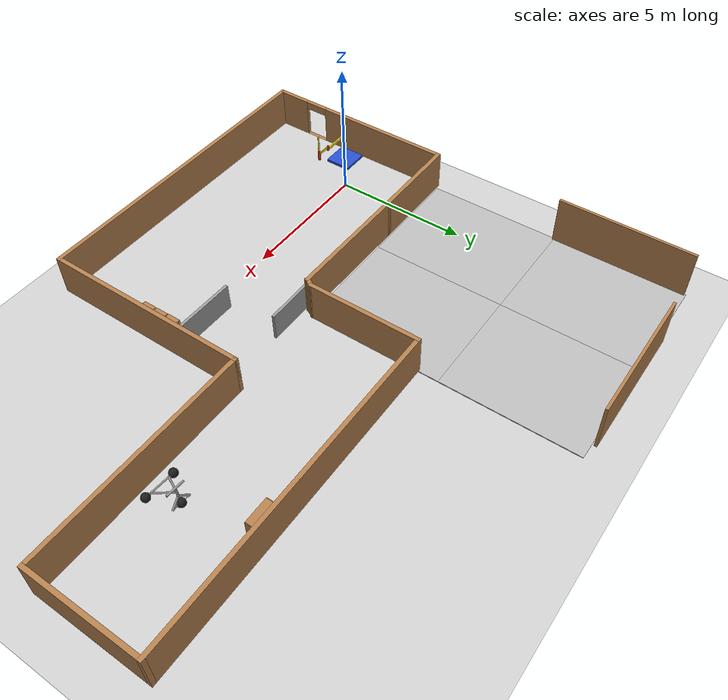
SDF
<sdf version="1.7">
 <world name="default">
  <light name="sun" type="directional">
   <pose>0 0 10 0 -0 0</pose>
   <diffuse>0.8 0.8 0.8 1</diffuse>
   <specular>0.2 0.2 0.2 1</specular>
   <attenuation>
    <range>1000</range>
    <constant>0.9</constant>
    <linear>0.01</linear>
    <quadratic>0.001</quadratic>
   </attenuation>
   <direction>-0.5 0.1 -0.9</direction>
   <spot><inner_angle>0</inner_angle><outer_angle>0</outer_angle><falloff>0</falloff></spot>
  </light>
  <model name="ground_plane">
   <static>1</static>
   <link name="link">
    <collision name="collision">
     <geometry><plane><normal>0 0 1</normal><size>100 100</size></plane></geometry>
     <surface>
      <contact><collide_bitmask>65535</collide_bitmask></contact>
      <friction><ode><mu>100</mu><mu2>50</mu2></ode></friction>
     </surface>
    </collision>
    <visual name="visual">
     <cast_shadows>0</cast_shadows>
     <geometry><plane><normal>0 0 1</normal><size>100 100</size></plane></geometry>
     <material>
      <script><uri>file://media/materials/scripts/gazebo.material</uri><name>Gazebo/Grey</name></script>
     </material>
    </visual>
   </link>
  </model>
  <gravity>0 0 -9.8</gravity>
  <magnetic_field>6e-06 2.3e-05 -4.2e-05</magnetic_field>
  <atmosphere type="adiabatic"/>
  <physics type="ode">
   <max_step_size>0.001</max_step_size>
   <real_time_factor>1</real_time_factor>
   <real_time_update_rate>1000</real_time_update_rate>
  </physics>
  <scene><ambient>0.4 0.4 0.4 1</ambient><background>0.7 0.7 0.7 1</background><shadows>1</shadows></scene>
  <audio><device>default</device></audio>
  <spherical_coordinates>
   <surface_model>EARTH_WGS84</surface_model>
   <latitude_deg>0</latitude_deg>
   <longitude_deg>0</longitude_deg>
   <elevation>0</elevation>
   <heading_deg>0</heading_deg>
  </spherical_coordinates>
  <model name="Untitled">
   <pose>8.035 1.37 0 0 -0 0</pose>
   <link name="Wall_10">
    <collision name="Wall_10_Collision">
     <geometry><box><size>4.25 0.15 1.5</size></box></geometry>
     <pose>0 0 0.75 0 -0 0</pose>
    </collision>
    <visual name="Wall_10_Visual">
     <pose>0 0 0.75 0 -0 0</pose>
     <geometry><box><size>4.25 0.15 1.5</size></box></geometry>
     <material>
      <script><uri>file://media/materials/scripts/gazebo.material</uri><name>Gazebo/Wood</name></script>
      <ambient>1 1 1 1</ambient>
     </material>
     <meta><layer>0</layer></meta>
    </visual>
    <pose>9.975 3.8 0 0 -0 1.5708</pose>
   </link>
   <link name="Wall_11">
    <collision name="Wall_11_Collision">
     <geometry><box><size>12 0.15 1.5</size></box></geometry>
     <pose>0 0 0.75 0 -0 0</pose>
    </collision>
    <visual name="Wall_11_Visual">
     <pose>0 0 0.75 0 -0 0</pose>
     <geometry><box><size>12 0.15 1.5</size></box></geometry>
     <material>
      <script><uri>file://media/materials/scripts/gazebo.material</uri><name>Gazebo/Wood</name></script>
      <ambient>1 1 1 1</ambient>
     </material>
     <meta><layer>0</layer></meta>
    </visual>
    <pose>4.05 5.85 0 0 -0 3.14159</pose>
   </link>
   <link name="Wall_12">
    <collision name="Wall_12_Collision">
     <geometry><box><size>4.25 0.15 1.5</size></box></geometry>
     <pose>0 0 0.75 0 -0 0</pose>
    </collision>
    <visual name="Wall_12_Visual">
     <pose>0 0 0.75 0 -0 0</pose>
     <geometry><box><size>4.25 0.15 1.5</size></box></geometry>
     <material>
      <script><uri>file://media/materials/scripts/gazebo.material</uri><name>Gazebo/Wood</name></script>
      <ambient>1 1 1 1</ambient>
     </material>
     <meta><layer>0</layer></meta>
    </visual>
    <pose>-1.875 3.8 0 0 -0 -1.5708</pose>
   </link>
   <link name="Wall_14">
    <collision name="Wall_14_Collision">
     <geometry><box><size>4.75 0.15 1.5</size></box></geometry>
     <pose>0 0 0.75 0 -0 0</pose>
    </collision>
    <visual name="Wall_14_Visual">
     <pose>0 0 0.75 0 -0 0</pose>
     <geometry><box><size>4.75 0.15 1.5</size></box></geometry>
     <material>
      <script><uri>file://media/materials/scripts/gazebo.material</uri><name>Gazebo/Wood</name></script>
      <ambient>1 1 1 1</ambient>
     </material>
     <meta><layer>0</layer></meta>
    </visual>
    <pose>-4.325 1.5155 0 0 -0 -0.006739</pose>
   </link>
   <link name="Wall_15">
    <collision name="Wall_15_Collision">
     <geometry><box><size>0.441548 0.15 1.5</size></box></geometry>
     <pose>0 0 0.75 0 -0 0</pose>
    </collision>
    <visual name="Wall_15_Visual">
     <pose>0 0 0.75 0 -0 0</pose>
     <geometry><box><size>0.441548 0.15 1.5</size></box></geometry>
     <material>
      <script><uri>file://media/materials/scripts/gazebo.material</uri><name>Gazebo/Wood</name></script>
      <ambient>1 1 1 1</ambient>
     </material>
     <meta><layer>0</layer></meta>
    </visual>
    <pose>-1.95 1.625 0 0 -0 1.03038</pose>
   </link>
   <link name="Wall_5">
    <collision name="Wall_5_Collision">
     <geometry><box><size>3.5 0.15 1.5</size></box></geometry>
     <pose>0 0 0.75 0 -0 0</pose>
    </collision>
    <visual name="Wall_5_Visual">
     <pose>0 0 0.75 0 -0 0</pose>
     <geometry><box><size>3.5 0.15 1.5</size></box></geometry>
     <material>
      <script><uri>file://media/materials/scripts/gazebo.material</uri><name>Gazebo/Wood</name></script>
      <ambient>1 1 1 1</ambient>
     </material>
     <meta><layer>0</layer></meta>
    </visual>
    <pose>-8.3 1.531 0 0 -0 3.14159</pose>
   </link>
   <link name="Wall_6">
    <pose>-9.975 -2.1595 0 0 -0 -1.5708</pose>
    <visual name="Wall_6_Visual_0">
     <pose>-1.12851 0 0.75 0 -0 0</pose>
     <geometry><box><size>5.27397 0.15 1.5</size></box></geometry>
     <material>
      <script><uri>file://media/materials/scripts/gazebo.material</uri><name>Gazebo/Wood</name></script>
      <ambient>1 1 1 1</ambient>
     </material>
     <meta><layer>0</layer></meta>
    </visual>
    <collision name="Wall_6_Collision_0">
     <geometry><box><size>5.27397 0.15 1.5</size></box></geometry>
     <pose>-1.12851 0 0.75 0 -0 0</pose>
    </collision>
    <visual name="Wall_6_Visual_1">
     <pose>3.08699 0 0.75 0 -0 0</pose>
     <geometry><box><size>1.35703 0.15 1.5</size></box></geometry>
     <material>
      <script><uri>file://media/materials/scripts/gazebo.material</uri><name>Gazebo/Wood</name></script>
      <ambient>1 1 1 1</ambient>
     </material>
     <meta><layer>0</layer></meta>
    </visual>
    <collision name="Wall_6_Collision_1">
     <geometry><box><size>1.35703 0.15 1.5</size></box></geometry>
     <pose>3.08699 0 0.75 0 -0 0</pose>
    </collision>
    <visual name="Wall_6_Visual_2">
     <pose>1.95847 0 0 0 -0 0</pose>
     <geometry><box><size>0.9 0.15 0</size></box></geometry>
     <material>
      <script><uri>file://media/materials/scripts/gazebo.material</uri><name>Gazebo/Wood</name></script>
      <ambient>1 1 1 1</ambient>
     </material>
     <meta><layer>0</layer></meta>
    </visual>
    <collision name="Wall_6_Collision_2">
     <geometry><box><size>0.9 0.15 0</size></box></geometry>
     <pose>1.95847 0 0 0 -0 0</pose>
    </collision>
    <visual name="Wall_6_Visual_3">
     <pose>1.95847 0 1.35 0 -0 0</pose>
     <geometry><box><size>0.9 0.15 0.3</size></box></geometry>
     <material>
      <script><uri>file://media/materials/scripts/gazebo.material</uri><name>Gazebo/Wood</name></script>
      <ambient>1 1 1 1</ambient>
     </material>
     <meta><layer>0</layer></meta>
    </visual>
    <collision name="Wall_6_Collision_3">
     <geometry><box><size>0.9 0.15 0.3</size></box></geometry>
     <pose>1.95847 0 1.35 0 -0 0</pose>
    </collision>
   </link>
   <link name="Wall_7">
    <collision name="Wall_7_Collision">
     <geometry><box><size>12 0.15 1.5</size></box></geometry>
     <pose>0 0 0.75 0 -0 0</pose>
    </collision>
    <visual name="Wall_7_Visual">
     <pose>0 0 0.75 0 -0 0</pose>
     <geometry><box><size>12 0.15 1.5</size></box></geometry>
     <material>
      <script><uri>file://media/materials/scripts/gazebo.material</uri><name>Gazebo/Wood</name></script>
      <ambient>1 1 1 1</ambient>
     </material>
     <meta><layer>0</layer></meta>
    </visual>
    <pose>-4.05 -5.85 0 0 -0 0</pose>
   </link>
   <link name="Wall_8">
    <collision name="Wall_8_Collision">
     <geometry><box><size>7.75 0.15 1.5</size></box></geometry>
     <pose>0 0 0.75 0 -0 0</pose>
    </collision>
    <visual name="Wall_8_Visual">
     <pose>0 0 0.75 0 -0 0</pose>
     <geometry><box><size>7.75 0.15 1.5</size></box></geometry>
     <material>
      <script><uri>file://media/materials/scripts/gazebo.material</uri><name>Gazebo/Wood</name></script>
      <ambient>1 1 1 1</ambient>
     </material>
     <meta><layer>0</layer></meta>
    </visual>
    <pose>1.875 -2.05 0 0 -0 1.5708</pose>
   </link>
   <link name="Wall_9">
    <collision name="Wall_9_Collision">
     <geometry><box><size>8.25 0.15 1.5</size></box></geometry>
     <pose>0 0 0.75 0 -0 0</pose>
    </collision>
    <visual name="Wall_9_Visual">
     <pose>0 0 0.75 0 -0 0</pose>
     <geometry><box><size>8.25 0.15 1.5</size></box></geometry>
     <material>
      <script><uri>file://media/materials/scripts/gazebo.material</uri><name>Gazebo/Wood</name></script>
      <ambient>1 1 1 1</ambient>
     </material>
     <meta><layer>0</layer></meta>
    </visual>
    <pose>5.925 1.75 0 0 -0 0</pose>
   </link>
   <static>1</static>
  </model>
  <model name="mud_box">
   <static>1</static>
   <link name="link">
    <collision name="collision"><geometry><box><size>8 10 0.2</size></box></geometry></collision>
    <visual name="visual_1">
     <pose>-2 2.5 0 0 -0 0</pose>
     <cast_shadows>0</cast_shadows>
     <geometry><box><size>4 5 0.2</size></box></geometry>
     <material>
      <script>
       <uri>model://mud_box/materials/scripts</uri>
       <uri>model://mud_box/materials/textures</uri>
       <name>vrc/mud</name>
      </script>
     </material>
    </visual>
    <visual name="visual_2">
     <pose>2 2.5 0 0 -0 0</pose>
     <cast_shadows>0</cast_shadows>
     <geometry><box><size>4 5 0.2</size></box></geometry>
     <material>
      <script>
       <uri>model://mud_box/materials/scripts</uri>
       <uri>model://mud_box/materials/textures</uri>
       <name>vrc/mud</name>
      </script>
     </material>
    </visual>
    <visual name="visual_3">
     <pose>2 -2.5 0 0 -0 0</pose>
     <cast_shadows>0</cast_shadows>
     <geometry><box><size>4 5 0.2</size></box></geometry>
     <material>
      <script>
       <uri>model://mud_box/materials/scripts</uri>
       <uri>model://mud_box/materials/textures</uri>
       <name>vrc/mud</name>
      </script>
     </material>
    </visual>
    <visual name="visual_4">
     <pose>-2 -2.5 0 0 -0 0</pose>
     <cast_shadows>0</cast_shadows>
     <geometry><box><size>4 5 0.2</size></box></geometry>
     <material>
      <script>
       <uri>model://mud_box/materials/scripts</uri>
       <uri>model://mud_box/materials/textures</uri>
       <name>vrc/mud</name>
      </script>
     </material>
    </visual>
   </link>
   <pose>2.16605 8.01541 -0.090493 0 -0 0</pose>
  </model>
  <model name="fence">
   <static>1</static>
   <link name="link">
    <pose>0 0 0.915 0 -0 0</pose>
    <collision name="collision"><geometry><box><size>0.1 5 1.83</size></box></geometry></collision>
    <visual name="visual">
     <cast_shadows>0</cast_shadows>
     <geometry><box><size>0.1 5 1.83</size></box></geometry>
     <material>
      <script>
       <uri>https://fuel.ignitionrobotics.org/1.0/athackst/models/fence/2/files/materials/scripts</uri>
       <uri>https://fuel.ignitionrobotics.org/1.0/athackst/models/fence/2/files/materials/textures</uri>
       <name>Fence/WoodBoarding</name>
      </script>
     </material>
    </visual>
   </link>
   <pose>-1.80264 10.4623 0 0 -0 0</pose>
  </model>
  <model name="fence_0">
   <static>1</static>
   <link name="link">
    <pose>0 0 0.915 0 -0 0</pose>
    <collision name="collision"><geometry><box><size>0.1 5 1.83</size></box></geometry></collision>
    <visual name="visual">
     <cast_shadows>0</cast_shadows>
     <geometry><box><size>0.1 5 1.83</size></box></geometry>
     <material>
      <script>
       <uri>https://fuel.ignitionrobotics.org/1.0/athackst/models/fence/2/files/materials/scripts</uri>
       <uri>https://fuel.ignitionrobotics.org/1.0/athackst/models/fence/2/files/materials/textures</uri>
       <name>Fence/WoodBoarding</name>
      </script>
     </material>
    </visual>
   </link>
   <pose>3.10267 13.1276 0 0 -0 1.56884</pose>
  </model>
  <model name="bookshelf">
   <static>1</static>
   <link name="link">
    <inertial><mass>1</mass></inertial>
    <collision name="back">
     <pose>0 0.005 0.6 0 -0 0</pose>
     <geometry><box><size>0.9 0.01 1.2</size></box></geometry>
    </collision>
    <visual name="visual1">
     <pose>0 0.005 0.6 0 -0 0</pose>
     <geometry><box><size>0.9 0.01 1.2</size></box></geometry>
     <material>
      <script><uri>file://media/materials/scripts/gazebo.material</uri><name>Gazebo/Wood</name></script>
     </material>
    </visual>
    <collision name="left_side">
     <pose>0.45 -0.195 0.6 0 -0 0</pose>
     <geometry><box><size>0.02 0.4 1.2</size></box></geometry>
    </collision>
    <visual name="visual2">
     <pose>0.45 -0.195 0.6 0 -0 0</pose>
     <geometry><box><size>0.02 0.4 1.2</size></box></geometry>
     <material>
      <script><uri>file://media/materials/scripts/gazebo.material</uri><name>Gazebo/Wood</name></script>
     </material>
    </visual>
    <collision name="right_side">
     <pose>-0.45 -0.195 0.6 0 -0 0</pose>
     <geometry><box><size>0.02 0.4 1.2</size></box></geometry>
    </collision>
    <visual name="visual3">
     <pose>-0.45 -0.195 0.6 0 -0 0</pose>
     <geometry><box><size>0.02 0.4 1.2</size></box></geometry>
     <material>
      <script><uri>file://media/materials/scripts/gazebo.material</uri><name>Gazebo/Wood</name></script>
     </material>
    </visual>
    <collision name="bottom">
     <pose>0 -0.195 0.03 0 -0 0</pose>
     <geometry><box><size>0.88 0.4 0.06</size></box></geometry>
    </collision>
    <visual name="visual4">
     <pose>0 -0.195 0.03 0 -0 0</pose>
     <geometry><box><size>0.88 0.4 0.06</size></box></geometry>
     <material>
      <script><uri>file://media/materials/scripts/gazebo.material</uri><name>Gazebo/Wood</name></script>
     </material>
    </visual>
    <collision name="top">
     <pose>0 -0.195 1.19 0 -0 0</pose>
     <geometry><box><size>0.88 0.4 0.02</size></box></geometry>
    </collision>
    <visual name="visual5">
     <pose>0 -0.195 1.19 0 -0 0</pose>
     <geometry><box><size>0.88 0.4 0.02</size></box></geometry>
     <material>
      <script><uri>file://media/materials/scripts/gazebo.material</uri><name>Gazebo/Wood</name></script>
     </material>
    </visual>
    <collision name="low_shelf">
     <pose>0 -0.195 0.43 0 -0 0</pose>
     <geometry><box><size>0.88 0.4 0.02</size></box></geometry>
    </collision>
    <visual name="visual6">
     <pose>0 -0.195 0.43 0 -0 0</pose>
     <geometry><box><size>0.88 0.4 0.02</size></box></geometry>
     <material>
      <script><uri>file://media/materials/scripts/gazebo.material</uri><name>Gazebo/Wood</name></script>
     </material>
    </visual>
    <collision name="high_shelf">
     <pose>0 -0.195 0.8 0 -0 0</pose>
     <geometry><box><size>0.88 0.4 0.02</size></box></geometry>
    </collision>
    <visual name="visual7">
     <pose>0 -0.195 0.8 0 -0 0</pose>
     <geometry><box><size>0.88 0.4 0.02</size></box></geometry>
     <material>
      <script><uri>file://media/materials/scripts/gazebo.material</uri><name>Gazebo/Wood</name></script>
     </material>
    </visual>
   </link>
   <pose>13.3788 7.16074 0 0 -0 0</pose>
  </model>
  <model name="cabinet">
   <static>1</static>
   <link name="cabinet_bottom_plate">
    <inertial>
     <pose>0 0 -1 0 -0 0</pose>
     <inertia><ixx>2.05</ixx><ixy>0</ixy><ixz>0</ixz><iyy>2.05</iyy><iyz>0</iyz><izz>2.05</izz></inertia>
     <mass>25</mass>
    </inertial>
    <collision name="cabinet_bottom_plate_geom">
     <pose>0 0 0.01 0 -0 0</pose>
     <geometry><box><size>0.45 0.45 0.02</size></box></geometry>
    </collision>
    <visual name="cabinet_bottom_plate_geom_visual">
     <pose>0 0 0.01 0 -0 0</pose>
     <geometry><box><size>0.45 0.45 0.02</size></box></geometry>
     <material>
      <script><uri>file://media/materials/scripts/gazebo.material</uri><name>Gazebo/Wood</name></script>
     </material>
    </visual>
    <collision name="cabinet_bottom_plate_geom_cabinet_back_plate">
     <pose>0.235 0 0.51 0 -0 0</pose>
     <geometry><box><size>0.02 0.45 1.02</size></box></geometry>
    </collision>
    <visual name="cabinet_bottom_plate_geom_cabinet_back_plate_visual">
     <pose>0.235 0 0.51 0 -0 0</pose>
     <geometry><box><size>0.02 0.45 1.02</size></box></geometry>
     <material>
      <script><uri>file://media/materials/scripts/gazebo.material</uri><name>Gazebo/Wood</name></script>
     </material>
    </visual>
    <collision name="cabinet_bottom_plate_geom_cabinet_left_plate">
     <pose>0 0.235 0.51 0 -0 0</pose>
     <geometry><box><size>0.45 0.02 1.02</size></box></geometry>
    </collision>
    <visual name="cabinet_bottom_plate_geom_cabinet_left_plate_visual">
     <pose>0 0.235 0.51 0 -0 0</pose>
     <geometry><box><size>0.45 0.02 1.02</size></box></geometry>
     <material>
      <script><uri>file://media/materials/scripts/gazebo.material</uri><name>Gazebo/Wood</name></script>
     </material>
    </visual>
    <collision name="cabinet_bottom_plate_geom_cabinet_middle_plate">
     <pose>0 0 0.51 0 -0 0</pose>
     <geometry><box><size>0.45 0.45 0.02</size></box></geometry>
    </collision>
    <visual name="cabinet_bottom_plate_geom_cabinet_middle_plate_visual">
     <pose>0 0 0.51 0 -0 0</pose>
     <geometry><box><size>0.45 0.45 0.02</size></box></geometry>
     <material>
      <script><uri>file://media/materials/scripts/gazebo.material</uri><name>Gazebo/Wood</name></script>
     </material>
    </visual>
    <collision name="cabinet_bottom_plate_geom_cabinet_right_plate">
     <pose>0 -0.235 0.51 0 -0 0</pose>
     <geometry><box><size>0.45 0.02 1.02</size></box></geometry>
    </collision>
    <visual name="cabinet_bottom_plate_geom_cabinet_right_plate_visual">
     <pose>0 -0.235 0.51 0 -0 0</pose>
     <geometry><box><size>0.45 0.02 1.02</size></box></geometry>
     <material>
      <script><uri>file://media/materials/scripts/gazebo.material</uri><name>Gazebo/Wood</name></script>
     </material>
    </visual>
    <collision name="cabinet_bottom_plate_geom_cabinet_top_plate">
     <pose>0 0 1.01 0 -0 0</pose>
     <geometry><box><size>0.45 0.45 0.02</size></box></geometry>
    </collision>
    <visual name="cabinet_bottom_plate_geom_cabinet_top_plate_visual">
     <pose>0 0 1.01 0 -0 0</pose>
     <geometry><box><size>0.45 0.45 0.02</size></box></geometry>
     <material>
      <script><uri>file://media/materials/scripts/gazebo.material</uri><name>Gazebo/Wood</name></script>
     </material>
    </visual>
   </link>
   <pose>9.65126 -0.407227 0 0 -0 0</pose>
  </model>
  <model name="cabinet_0">
   <static>1</static>
   <link name="cabinet_bottom_plate">
    <inertial>
     <pose>0 0 -1 0 -0 0</pose>
     <inertia><ixx>2.05</ixx><ixy>0</ixy><ixz>0</ixz><iyy>2.05</iyy><iyz>0</iyz><izz>2.05</izz></inertia>
     <mass>25</mass>
    </inertial>
    <collision name="cabinet_bottom_plate_geom">
     <pose>0 0 0.01 0 -0 0</pose>
     <geometry><box><size>0.45 0.45 0.02</size></box></geometry>
    </collision>
    <visual name="cabinet_bottom_plate_geom_visual">
     <pose>0 0 0.01 0 -0 0</pose>
     <geometry><box><size>0.45 0.45 0.02</size></box></geometry>
     <material>
      <script><uri>file://media/materials/scripts/gazebo.material</uri><name>Gazebo/Wood</name></script>
     </material>
    </visual>
    <collision name="cabinet_bottom_plate_geom_cabinet_back_plate">
     <pose>0.235 0 0.51 0 -0 0</pose>
     <geometry><box><size>0.02 0.45 1.02</size></box></geometry>
    </collision>
    <visual name="cabinet_bottom_plate_geom_cabinet_back_plate_visual">
     <pose>0.235 0 0.51 0 -0 0</pose>
     <geometry><box><size>0.02 0.45 1.02</size></box></geometry>
     <material>
      <script><uri>file://media/materials/scripts/gazebo.material</uri><name>Gazebo/Wood</name></script>
     </material>
    </visual>
    <collision name="cabinet_bottom_plate_geom_cabinet_left_plate">
     <pose>0 0.235 0.51 0 -0 0</pose>
     <geometry><box><size>0.45 0.02 1.02</size></box></geometry>
    </collision>
    <visual name="cabinet_bottom_plate_geom_cabinet_left_plate_visual">
     <pose>0 0.235 0.51 0 -0 0</pose>
     <geometry><box><size>0.45 0.02 1.02</size></box></geometry>
     <material>
      <script><uri>file://media/materials/scripts/gazebo.material</uri><name>Gazebo/Wood</name></script>
     </material>
    </visual>
    <collision name="cabinet_bottom_plate_geom_cabinet_middle_plate">
     <pose>0 0 0.51 0 -0 0</pose>
     <geometry><box><size>0.45 0.45 0.02</size></box></geometry>
    </collision>
    <visual name="cabinet_bottom_plate_geom_cabinet_middle_plate_visual">
     <pose>0 0 0.51 0 -0 0</pose>
     <geometry><box><size>0.45 0.45 0.02</size></box></geometry>
     <material>
      <script><uri>file://media/materials/scripts/gazebo.material</uri><name>Gazebo/Wood</name></script>
     </material>
    </visual>
    <collision name="cabinet_bottom_plate_geom_cabinet_right_plate">
     <pose>0 -0.235 0.51 0 -0 0</pose>
     <geometry><box><size>0.45 0.02 1.02</size></box></geometry>
    </collision>
    <visual name="cabinet_bottom_plate_geom_cabinet_right_plate_visual">
     <pose>0 -0.235 0.51 0 -0 0</pose>
     <geometry><box><size>0.45 0.02 1.02</size></box></geometry>
     <material>
      <script><uri>file://media/materials/scripts/gazebo.material</uri><name>Gazebo/Wood</name></script>
     </material>
    </visual>
    <collision name="cabinet_bottom_plate_geom_cabinet_top_plate">
     <pose>0 0 1.01 0 -0 0</pose>
     <geometry><box><size>0.45 0.45 0.02</size></box></geometry>
    </collision>
    <visual name="cabinet_bottom_plate_geom_cabinet_top_plate_visual">
     <pose>0 0 1.01 0 -0 0</pose>
     <geometry><box><size>0.45 0.45 0.02</size></box></geometry>
     <material>
      <script><uri>file://media/materials/scripts/gazebo.material</uri><name>Gazebo/Wood</name></script>
     </material>
    </visual>
   </link>
   <pose>9.63615 0.098483 0 0 -0 0</pose>
  </model>
  <model name="cabinet_1">
   <static>1</static>
   <link name="cabinet_bottom_plate">
    <inertial>
     <pose>0 0 -1 0 -0 0</pose>
     <inertia><ixx>2.05</ixx><ixy>0</ixy><ixz>0</ixz><iyy>2.05</iyy><iyz>0</iyz><izz>2.05</izz></inertia>
     <mass>25</mass>
    </inertial>
    <collision name="cabinet_bottom_plate_geom">
     <pose>0 0 0.01 0 -0 0</pose>
     <geometry><box><size>0.45 0.45 0.02</size></box></geometry>
    </collision>
    <visual name="cabinet_bottom_plate_geom_visual">
     <pose>0 0 0.01 0 -0 0</pose>
     <geometry><box><size>0.45 0.45 0.02</size></box></geometry>
     <material>
      <script><uri>file://media/materials/scripts/gazebo.material</uri><name>Gazebo/Wood</name></script>
     </material>
    </visual>
    <collision name="cabinet_bottom_plate_geom_cabinet_back_plate">
     <pose>0.235 0 0.51 0 -0 0</pose>
     <geometry><box><size>0.02 0.45 1.02</size></box></geometry>
    </collision>
    <visual name="cabinet_bottom_plate_geom_cabinet_back_plate_visual">
     <pose>0.235 0 0.51 0 -0 0</pose>
     <geometry><box><size>0.02 0.45 1.02</size></box></geometry>
     <material>
      <script><uri>file://media/materials/scripts/gazebo.material</uri><name>Gazebo/Wood</name></script>
     </material>
    </visual>
    <collision name="cabinet_bottom_plate_geom_cabinet_left_plate">
     <pose>0 0.235 0.51 0 -0 0</pose>
     <geometry><box><size>0.45 0.02 1.02</size></box></geometry>
    </collision>
    <visual name="cabinet_bottom_plate_geom_cabinet_left_plate_visual">
     <pose>0 0.235 0.51 0 -0 0</pose>
     <geometry><box><size>0.45 0.02 1.02</size></box></geometry>
     <material>
      <script><uri>file://media/materials/scripts/gazebo.material</uri><name>Gazebo/Wood</name></script>
     </material>
    </visual>
    <collision name="cabinet_bottom_plate_geom_cabinet_middle_plate">
     <pose>0 0 0.51 0 -0 0</pose>
     <geometry><box><size>0.45 0.45 0.02</size></box></geometry>
    </collision>
    <visual name="cabinet_bottom_plate_geom_cabinet_middle_plate_visual">
     <pose>0 0 0.51 0 -0 0</pose>
     <geometry><box><size>0.45 0.45 0.02</size></box></geometry>
     <material>
      <script><uri>file://media/materials/scripts/gazebo.material</uri><name>Gazebo/Wood</name></script>
     </material>
    </visual>
    <collision name="cabinet_bottom_plate_geom_cabinet_right_plate">
     <pose>0 -0.235 0.51 0 -0 0</pose>
     <geometry><box><size>0.45 0.02 1.02</size></box></geometry>
    </collision>
    <visual name="cabinet_bottom_plate_geom_cabinet_right_plate_visual">
     <pose>0 -0.235 0.51 0 -0 0</pose>
     <geometry><box><size>0.45 0.02 1.02</size></box></geometry>
     <material>
      <script><uri>file://media/materials/scripts/gazebo.material</uri><name>Gazebo/Wood</name></script>
     </material>
    </visual>
    <collision name="cabinet_bottom_plate_geom_cabinet_top_plate">
     <pose>0 0 1.01 0 -0 0</pose>
     <geometry><box><size>0.45 0.45 0.02</size></box></geometry>
    </collision>
    <visual name="cabinet_bottom_plate_geom_cabinet_top_plate_visual">
     <pose>0 0 1.01 0 -0 0</pose>
     <geometry><box><size>0.45 0.45 0.02</size></box></geometry>
     <material>
      <script><uri>file://media/materials/scripts/gazebo.material</uri><name>Gazebo/Wood</name></script>
     </material>
    </visual>
   </link>
   <pose>9.65623 -0.908227 0 0 -0 0</pose>
  </model>
  <light name="user_point_light_0" type="point">
   <pose>6.93334 -3.24288 1 0 -0 0</pose>
   <diffuse>0.5 0.5 0.5 1</diffuse>
   <specular>0.1 0.1 0.1 1</specular>
   <attenuation>
    <range>20</range>
    <constant>0.5</constant>
    <linear>0.01</linear>
    <quadratic>0.001</quadratic>
   </attenuation>
   <cast_shadows>0</cast_shadows>
   <direction>0 0 -1</direction>
   <spot><inner_angle>0</inner_angle><outer_angle>0</outer_angle><falloff>0</falloff></spot>
  </light>
  <light name="user_point_light_1" type="point">
   <pose>17.2804 6.65712 1 0 -0 0</pose>
   <diffuse>0.5 0.5 0.5 1</diffuse>
   <specular>0.1 0.1 0.1 1</specular>
   <attenuation>
    <range>20</range>
    <constant>0.5</constant>
    <linear>0.01</linear>
    <quadratic>0.001</quadratic>
   </attenuation>
   <cast_shadows>0</cast_shadows>
   <direction>0 0 -1</direction>
   <spot><inner_angle>0</inner_angle><outer_angle>0</outer_angle><falloff>0</falloff></spot>
  </light>
  <light name="user_point_light_2" type="point">
   <pose>0.106218 2.28764 1 0 -0 0</pose>
   <diffuse>0.5 0.5 0.5 1</diffuse>
   <specular>0.1 0.1 0.1 1</specular>
   <attenuation>
    <range>20</range>
    <constant>0.5</constant>
    <linear>0.01</linear>
    <quadratic>0.001</quadratic>
   </attenuation>
   <cast_shadows>0</cast_shadows>
   <direction>0 0 -1</direction>
   <spot><inner_angle>0</inner_angle><outer_angle>0</outer_angle><falloff>0</falloff></spot>
  </light>
  <light name="user_point_light_3" type="point">
   <pose>8.56427 6.74467 1 0 -0 0</pose>
   <diffuse>0.5 0.5 0.5 1</diffuse>
   <specular>0.1 0.1 0.1 1</specular>
   <attenuation>
    <range>20</range>
    <constant>0.5</constant>
    <linear>0.01</linear>
    <quadratic>0.001</quadratic>
   </attenuation>
   <cast_shadows>0</cast_shadows>
   <direction>0 0 -1</direction>
   <spot><inner_angle>0</inner_angle><outer_angle>0</outer_angle><falloff>0</falloff></spot>
  </light>
  <light name="user_point_light_4" type="point">
   <pose>-0.608477 -3.97811 1 0 -0 0</pose>
   <diffuse>0.5 0.5 0.5 1</diffuse>
   <specular>0.1 0.1 0.1 1</specular>
   <attenuation>
    <range>20</range>
    <constant>0.5</constant>
    <linear>0.01</linear>
    <quadratic>0.001</quadratic>
   </attenuation>
   <cast_shadows>0</cast_shadows>
   <direction>0 0 -1</direction>
   <spot><inner_angle>0</inner_angle><outer_angle>0</outer_angle><falloff>0</falloff></spot>
  </light>
  <model name="trisphere_cycle">
   <link name="frame">
    <pose>-0.408559 0 0.385023 0 -0.522021 0</pose>
    <inertial>
     <mass>10</mass>
     <inertia><ixx>0.228</ixx><iyy>0.743521</iyy><izz>0.965521</izz><ixy>0</ixy><ixz>0</ixz><iyz>0</iyz></inertia>
    </inertial>
    <collision name="axle_collision">
     <pose>-0.471335 0 0 1.5708 -0 0</pose>
     <geometry><cylinder><length>1.03923</length><radius>0.03</radius></cylinder></geometry>
    </collision>
    <visual name="axle_visual">
     <pose>-0.471335 0 0 1.5708 -0 0</pose>
     <geometry><cylinder><length>1.03923</length><radius>0.03</radius></cylinder></geometry>
     <material>
      <script><uri>file://media/materials/scripts/gazebo.material</uri><name>Gazebo/Grey</name></script>
     </material>
    </visual>
    <collision name="frame_left_collision">
     <pose>0 0.171552 0 -2.79253 1.57079 3.14159</pose>
     <geometry><cylinder><length>1.00317</length><radius>0.03</radius></cylinder></geometry>
    </collision>
    <visual name="frame_left_visual">
     <pose>0 0.171552 0 -2.79253 1.57079 3.14159</pose>
     <geometry><cylinder><length>1.00317</length><radius>0.03</radius></cylinder></geometry>
     <material>
      <script><uri>file://media/materials/scripts/gazebo.material</uri><name>Gazebo/Grey</name></script>
     </material>
    </visual>
    <collision name="frame_right_collision">
     <pose>0 -0.171552 0 2.79253 1.57079 -3.14159</pose>
     <geometry><cylinder><length>1.00317</length><radius>0.03</radius></cylinder></geometry>
    </collision>
    <visual name="frame_right_visual">
     <pose>0 -0.171552 0 2.79253 1.57079 -3.14159</pose>
     <geometry><cylinder><length>1.00317</length><radius>0.03</radius></cylinder></geometry>
     <material>
      <script><uri>file://media/materials/scripts/gazebo.material</uri><name>Gazebo/Grey</name></script>
     </material>
    </visual>
   </link>
   <link name="fork">
    <pose>0.041441 0 0.385023 0 -0.174533 0</pose>
    <inertial>
     <mass>3</mass>
     <inertia>
      <ixx>0.158203</ixx>
      <iyy>0.0583594</iyy>
      <izz>0.102656</izz>
      <ixy>0</ixy>
      <ixz>0</ixz>
      <iyz>0</iyz>
     </inertia>
    </inertial>
    <collision name="handlebars_collision">
     <pose>0 0 0.397748 1.5708 -0 0</pose>
     <geometry><cylinder><length>0.636396</length><radius>0.0375</radius></cylinder></geometry>
    </collision>
    <visual name="handlebars_visual">
     <pose>0 0 0.397748 1.5708 -0 0</pose>
     <geometry><cylinder><length>0.636396</length><radius>0.0375</radius></cylinder></geometry>
     <material>
      <script><uri>file://media/materials/scripts/gazebo.material</uri><name>Gazebo/Grey</name></script>
     </material>
    </visual>
    <collision name="headtube_collision">
     <pose>0 0 0.238649 0 -0 0</pose>
     <geometry><cylinder><length>0.318198</length><radius>0.0375</radius></cylinder></geometry>
    </collision>
    <visual name="headtube_visual">
     <pose>0 0 0.238649 0 -0 0</pose>
     <geometry><cylinder><length>0.318198</length><radius>0.0375</radius></cylinder></geometry>
     <material>
      <script><uri>file://media/materials/scripts/gazebo.material</uri><name>Gazebo/Grey</name></script>
     </material>
    </visual>
    <collision name="spindle_collision">
     <pose>0 0 -0.238649 1.5708 -0 0</pose>
     <geometry><cylinder><length>0.636396</length><radius>0.015</radius></cylinder></geometry>
    </collision>
    <visual name="spindle_visual">
     <pose>0 0 -0.238649 1.5708 -0 0</pose>
     <geometry><cylinder><length>0.636396</length><radius>0.015</radius></cylinder></geometry>
     <material>
      <script><uri>file://media/materials/scripts/gazebo.material</uri><name>Gazebo/Grey</name></script>
     </material>
    </visual>
    <collision name="fork_left_collision">
     <pose>0 0.159099 -0.07955 0.785398 -0 0</pose>
     <geometry><cylinder><length>0.45</length><radius>0.0375</radius></cylinder></geometry>
    </collision>
    <visual name="fork_left_visual">
     <pose>0 0.159099 -0.07955 0.785398 -0 0</pose>
     <geometry><cylinder><length>0.45</length><radius>0.0375</radius></cylinder></geometry>
     <material>
      <script><uri>file://media/materials/scripts/gazebo.material</uri><name>Gazebo/Grey</name></script>
     </material>
    </visual>
    <collision name="fork_right_collision">
     <pose>0 -0.159099 -0.07955 -0.785398 0 0</pose>
     <geometry><cylinder><length>0.45</length><radius>0.0375</radius></cylinder></geometry>
    </collision>
    <visual name="fork_right_visual">
     <pose>0 -0.159099 -0.07955 -0.785398 0 0</pose>
     <geometry><cylinder><length>0.45</length><radius>0.0375</radius></cylinder></geometry>
     <material>
      <script><uri>file://media/materials/scripts/gazebo.material</uri><name>Gazebo/Grey</name></script>
     </material>
    </visual>
   </link>
   <link name="wheel_front">
    <pose>0.082882 0 0.15 0 -0 0</pose>
    <inertial>
     <mass>0.5</mass>
     <inertia><ixx>0.0045</ixx><iyy>0.0045</iyy><izz>0.0045</izz><ixy>0</ixy><ixz>0</ixz><iyz>0</iyz></inertia>
    </inertial>
    <collision name="collision">
     <geometry><sphere><radius>0.15</radius></sphere></geometry>
     <surface><contact><ode><kp>1e+08</kp><kd>1</kd><min_depth>0.0005</min_depth></ode></contact></surface>
    </collision>
    <visual name="visual">
     <geometry><sphere><radius>0.15</radius></sphere></geometry>
     <material>
      <script><uri>file://media/materials/scripts/gazebo.material</uri><name>Gazebo/Black</name></script>
     </material>
    </visual>
   </link>
   <joint name="wheel_front_steer" type="revolute">
    <parent>frame</parent>
    <child>fork</child>
    <axis>
     <xyz>0 0 1</xyz>
     <limit><lower>-0.959931</lower><upper>0.959931</upper></limit>
     <dynamics><spring_reference>0</spring_reference><spring_stiffness>0</spring_stiffness></dynamics>
    </axis>
   </joint>
   <joint name="wheel_front_spin" type="revolute">
    <parent>fork</parent>
    <child>wheel_front</child>
    <axis>
     <xyz>0 1 0</xyz>
     <limit><lower>-1e+16</lower><upper>1e+16</upper></limit>
     <dynamics><spring_reference>0</spring_reference><spring_stiffness>0</spring_stiffness></dynamics>
    </axis>
   </joint>
   <link name="wheel_rear_left">
    <pose>-0.817118 0.519615 0.15 0 -0 0</pose>
    <inertial>
     <mass>0.5</mass>
     <inertia><ixx>0.0045</ixx><iyy>0.0045</iyy><izz>0.0045</izz><ixy>0</ixy><ixz>0</ixz><iyz>0</iyz></inertia>
    </inertial>
    <collision name="collision">
     <geometry><sphere><radius>0.15</radius></sphere></geometry>
     <surface><contact><ode><kp>1e+08</kp><kd>1</kd><min_depth>0.0005</min_depth></ode></contact></surface>
    </collision>
    <visual name="visual">
     <geometry><sphere><radius>0.15</radius></sphere></geometry>
     <material>
      <script><uri>file://media/materials/scripts/gazebo.material</uri><name>Gazebo/Black</name></script>
     </material>
    </visual>
   </link>
   <joint name="wheel_rear_left_spin" type="revolute">
    <parent>frame</parent>
    <child>wheel_rear_left</child>
    <axis>
     <xyz>0 1 0</xyz>
     <limit><lower>-1e+16</lower><upper>1e+16</upper></limit>
     <dynamics><spring_reference>0</spring_reference><spring_stiffness>0</spring_stiffness></dynamics>
    </axis>
   </joint>
   <link name="wheel_rear_right">
    <pose>-0.817118 -0.519615 0.15 0 -0 0</pose>
    <inertial>
     <mass>0.5</mass>
     <inertia><ixx>0.0045</ixx><iyy>0.0045</iyy><izz>0.0045</izz><ixy>0</ixy><ixz>0</ixz><iyz>0</iyz></inertia>
    </inertial>
    <collision name="collision">
     <geometry><sphere><radius>0.15</radius></sphere></geometry>
     <surface><contact><ode><kp>1e+08</kp><kd>1</kd><min_depth>0.0005</min_depth></ode></contact></surface>
    </collision>
    <visual name="visual">
     <geometry><sphere><radius>0.15</radius></sphere></geometry>
     <material>
      <script><uri>file://media/materials/scripts/gazebo.material</uri><name>Gazebo/Black</name></script>
     </material>
    </visual>
   </link>
   <joint name="wheel_rear_right_spin" type="revolute">
    <parent>frame</parent>
    <child>wheel_rear_right</child>
    <axis>
     <xyz>0 1 0</xyz>
     <limit><lower>-1e+16</lower><upper>1e+16</upper></limit>
     <dynamics><spring_reference>0</spring_reference><spring_stiffness>0</spring_stiffness></dynamics>
    </axis>
   </joint>
   <pose>13.9571 4.3629 -0.000501 -0 1e-06 1.49299</pose>
  </model>
  <model name="unit_box">
   <pose>6.58914 2.67184 0.513758 -1e-06 1.7e-05 0.01126</pose>
   <link name="link">
    <inertial>
     <mass>1</mass>
     <inertia>
      <ixx>0.166667</ixx>
      <ixy>0</ixy>
      <ixz>0</ixz>
      <iyy>0.166667</iyy>
      <iyz>0</iyz>
      <izz>0.166667</izz>
     </inertia>
    </inertial>
    <collision name="collision"><geometry><box><size>2.06847 0.0968872 1.02755</size></box></geometry></collision>
    <visual name="visual">
     <geometry><box><size>2.06847 0.0968872 1.02755</size></box></geometry>
     <material>
      <script><name>Gazebo/Grey</name><uri>file://media/materials/scripts/gazebo.material</uri></script>
     </material>
    </visual>
   </link>
  </model>
  <model name="unit_box_0">
   <pose>8.60878 0.515106 0.499945 2e-06 -4.5e-05 -0.011047</pose>
   <link name="link">
    <inertial>
     <mass>1</mass>
     <inertia>
      <ixx>0.166667</ixx>
      <ixy>0</ixy>
      <ixz>0</ixz>
      <iyy>0.166667</iyy>
      <iyz>0</iyz>
      <izz>0.166667</izz>
     </inertia>
    </inertial>
    <collision name="collision"><geometry><box><size>2.44703 0.107328 1</size></box></geometry></collision>
    <visual name="visual">
     <geometry><box><size>2.44703 0.107328 1</size></box></geometry>
     <material>
      <script><name>Gazebo/Grey</name><uri>file://media/materials/scripts/gazebo.material</uri></script>
     </material>
    </visual>
   </link>
  </model>
  <model name="simple_arm">
   <link name="arm_base">
    <inertial>
     <pose>0 0 0.00099 0 -0 0</pose>
     <inertia><ixx>1.11</ixx><ixy>0</ixy><ixz>0</ixz><iyy>100.11</iyy><iyz>0</iyz><izz>1.01</izz></inertia>
     <mass>101</mass>
    </inertial>
    <collision name="arm_base_geom">
     <pose>0 0 0.05 0 -0 0</pose>
     <geometry><box><size>1 1 0.1</size></box></geometry>
    </collision>
    <visual name="arm_base_geom_visual">
     <pose>0 0 0.05 0 -0 0</pose>
     <geometry><box><size>1 1 0.1</size></box></geometry>
     <material>
      <script><uri>file://media/materials/scripts/gazebo.material</uri><name>Gazebo/Blue</name></script>
     </material>
    </visual>
    <collision name="arm_base_geom_arm_trunk">
     <pose>0 0 0.6 0 -0 0</pose>
     <geometry><cylinder><radius>0.05</radius><length>1</length></cylinder></geometry>
    </collision>
    <visual name="arm_base_geom_arm_trunk_visual">
     <pose>0 0 0.6 0 -0 0</pose>
     <geometry><cylinder><radius>0.05</radius><length>1</length></cylinder></geometry>
     <material>
      <script><uri>file://media/materials/scripts/gazebo.material</uri><name>Gazebo/Red</name></script>
     </material>
    </visual>
   </link>
   <link name="arm_shoulder_pan">
    <pose>0 0 1.1 0 -0 0</pose>
    <inertial>
     <pose>0.045455 0 0 0 -0 0</pose>
     <inertia><ixx>0.011</ixx><ixy>0</ixy><ixz>0</ixz><iyy>0.0225</iyy><iyz>0</iyz><izz>0.0135</izz></inertia>
     <mass>1.1</mass>
    </inertial>
    <collision name="arm_shoulder_pan_geom">
     <pose>0 0 0.05 0 -0 0</pose>
     <geometry><cylinder><radius>0.05</radius><length>0.1</length></cylinder></geometry>
    </collision>
    <visual name="arm_shoulder_pan_geom_visual">
     <pose>0 0 0.05 0 -0 0</pose>
     <geometry><cylinder><radius>0.05</radius><length>0.1</length></cylinder></geometry>
     <material>
      <script><uri>file://media/materials/scripts/gazebo.material</uri><name>Gazebo/Yellow</name></script>
     </material>
    </visual>
    <collision name="arm_shoulder_pan_geom_arm_shoulder">
     <pose>0.55 0 0.05 0 -0 0</pose>
     <geometry><box><size>1 0.05 0.1</size></box></geometry>
    </collision>
    <visual name="arm_shoulder_pan_geom_arm_shoulder_visual">
     <pose>0.55 0 0.05 0 -0 0</pose>
     <geometry><box><size>1 0.05 0.1</size></box></geometry>
     <material>
      <script><uri>file://media/materials/scripts/gazebo.material</uri><name>Gazebo/Yellow</name></script>
     </material>
    </visual>
   </link>
   <link name="arm_elbow_pan">
    <pose>1.05 0 1.1 0 -0 0</pose>
    <inertial>
     <pose>0.0875 0 0.083333 0 -0 0</pose>
     <inertia>
      <ixx>0.031</ixx>
      <ixy>0</ixy>
      <ixz>0.005</ixz>
      <iyy>0.07275</iyy>
      <iyz>0</iyz>
      <izz>0.04475</izz>
     </inertia>
     <mass>1.2</mass>
    </inertial>
    <collision name="arm_elbow_pan_geom">
     <pose>0 0 0.1 0 -0 0</pose>
     <geometry><cylinder><radius>0.05</radius><length>0.2</length></cylinder></geometry>
    </collision>
    <visual name="arm_elbow_pan_geom_visual">
     <pose>0 0 0.1 0 -0 0</pose>
     <geometry><cylinder><radius>0.05</radius><length>0.2</length></cylinder></geometry>
     <material>
      <script><uri>file://media/materials/scripts/gazebo.material</uri><name>Gazebo/Red</name></script>
     </material>
    </visual>
    <collision name="arm_elbow_pan_geom_arm_elbow">
     <pose>0.3 0 0.15 0 -0 0</pose>
     <geometry><box><size>0.5 0.03 0.1</size></box></geometry>
    </collision>
    <visual name="arm_elbow_pan_geom_arm_elbow_visual">
     <pose>0.3 0 0.15 0 -0 0</pose>
     <geometry><box><size>0.5 0.03 0.1</size></box></geometry>
     <material>
      <script><uri>file://media/materials/scripts/gazebo.material</uri><name>Gazebo/Yellow</name></script>
     </material>
    </visual>
    <collision name="arm_elbow_pan_geom_arm_wrist">
     <pose>0.55 0 0.15 0 -0 0</pose>
     <geometry><cylinder><radius>0.05</radius><length>0.3</length></cylinder></geometry>
    </collision>
    <visual name="arm_elbow_pan_geom_arm_wrist_visual">
     <pose>0.55 0 0.15 0 -0 0</pose>
     <geometry><cylinder><radius>0.05</radius><length>0.3</length></cylinder></geometry>
     <material>
      <script><uri>file://media/materials/scripts/gazebo.material</uri><name>Gazebo/Red</name></script>
     </material>
    </visual>
   </link>
   <link name="arm_wrist_lift">
    <pose>1.6 0 1.05 0 -0 0</pose>
    <inertial>
     <inertia><ixx>0.01</ixx><ixy>0</ixy><ixz>0</ixz><iyy>0.01</iyy><iyz>0</iyz><izz>0.001</izz></inertia>
     <mass>0.1</mass>
    </inertial>
    <collision name="arm_wrist_lift_geom">
     <pose>0 0 0.5 0 -0 0</pose>
     <geometry><cylinder><radius>0.03</radius><length>1</length></cylinder></geometry>
    </collision>
    <visual name="arm_wrist_lift_geom_visual">
     <pose>0 0 0.5 0 -0 0</pose>
     <geometry><cylinder><radius>0.03</radius><length>1</length></cylinder></geometry>
     <material>
      <script><uri>file://media/materials/scripts/gazebo.material</uri><name>Gazebo/Yellow</name></script>
     </material>
    </visual>
   </link>
   <link name="arm_wrist_roll">
    <pose>1.6 0 1 0 -0 0</pose>
    <inertial>
     <inertia><ixx>0.01</ixx><ixy>0</ixy><ixz>0</ixz><iyy>0.01</iyy><iyz>0</iyz><izz>0.001</izz></inertia>
     <mass>0.1</mass>
    </inertial>
    <collision name="arm_wrist_roll_geom">
     <pose>0 0 0.025 0 -0 0</pose>
     <geometry><cylinder><radius>0.05</radius><length>0.05</length></cylinder></geometry>
    </collision>
    <visual name="arm_wrist_roll_geom_visual">
     <pose>0 0 0.025 0 -0 0</pose>
     <geometry><cylinder><radius>0.05</radius><length>0.05</length></cylinder></geometry>
     <material>
      <script><uri>file://media/materials/scripts/gazebo.material</uri><name>Gazebo/Red</name></script>
     </material>
    </visual>
   </link>
   <joint name="arm_shoulder_pan_joint" type="revolute">
    <parent>arm_base</parent>
    <child>arm_shoulder_pan</child>
    <axis>
     <dynamics>
      <damping>1</damping>
      <friction>0</friction>
      <spring_reference>0</spring_reference>
      <spring_stiffness>0</spring_stiffness>
     </dynamics>
     <xyz expressed_in="__model__">0 0 1</xyz>
     <limit><lower>-1e+16</lower><upper>1e+16</upper></limit>
    </axis>
   </joint>
   <joint name="arm_elbow_pan_joint" type="revolute">
    <parent>arm_shoulder_pan</parent>
    <child>arm_elbow_pan</child>
    <axis>
     <dynamics>
      <damping>1</damping>
      <friction>0</friction>
      <spring_reference>0</spring_reference>
      <spring_stiffness>0</spring_stiffness>
     </dynamics>
     <xyz expressed_in="__model__">0 0 1</xyz>
     <limit><lower>-1e+16</lower><upper>1e+16</upper></limit>
    </axis>
   </joint>
   <joint name="arm_wrist_lift_joint" type="prismatic">
    <parent>arm_elbow_pan</parent>
    <child>arm_wrist_lift</child>
    <axis>
     <dynamics>
      <damping>1</damping>
      <friction>0</friction>
      <spring_reference>0</spring_reference>
      <spring_stiffness>0</spring_stiffness>
     </dynamics>
     <limit><lower>-0.8</lower><upper>0.1</upper></limit>
     <xyz expressed_in="__model__">0 0 1</xyz>
    </axis>
   </joint>
   <joint name="arm_wrist_roll_joint" type="revolute">
    <parent>arm_wrist_lift</parent>
    <child>arm_wrist_roll</child>
    <axis>
     <dynamics>
      <damping>1</damping>
      <friction>0</friction>
      <spring_reference>0</spring_reference>
      <spring_stiffness>0</spring_stiffness>
     </dynamics>
     <limit><lower>-2.99999</lower><upper>2.99999</upper></limit>
     <xyz expressed_in="__model__">0 0 1</xyz>
    </axis>
   </joint>
   <pose>-1.29881 -0.961562 -0 0 0 -0.000682</pose>
  </model>
 </world>
</sdf>
